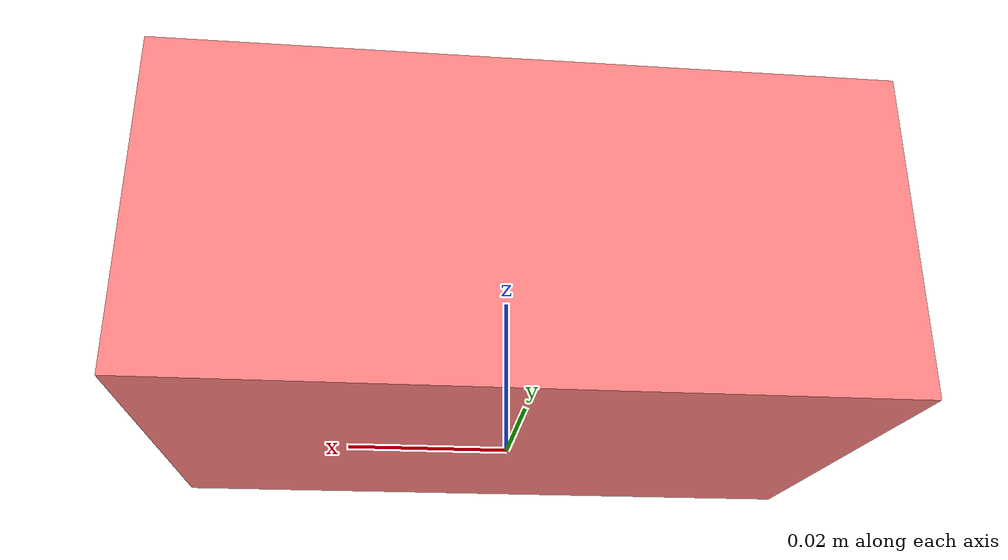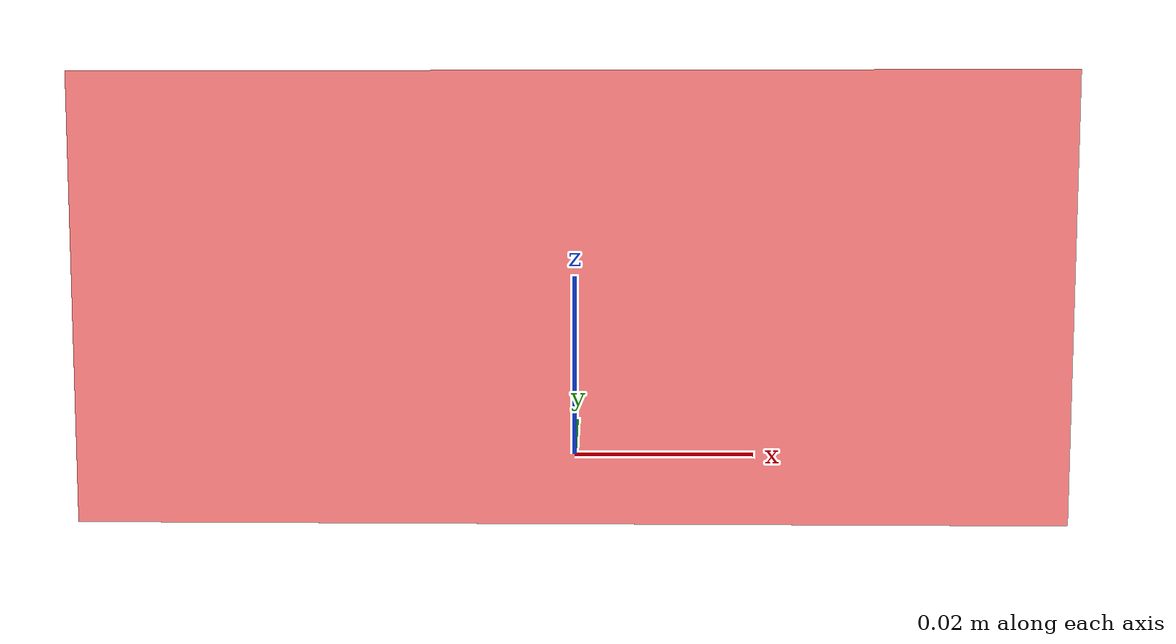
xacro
<?xml version="1.0"?>
<robot xmlns:xacro="http://www.ros.org/wiki/xacro">

    <!-- dimensions of the pi box -->
    <xacro:property name="pilength" value="0.088" />
    <xacro:property name="piwidth" value="0.056" />
    <xacro:property name="piheight" value="0.040" />

    <material name="pi-box">
        <color rgba="1.0 0.5 0.5 1.0" />
    </material>

    <link name="pi_box">
        <visual>
            <origin xyz="0.0 0.0 ${piheight/2}" />
            <geometry>
                <box size="${pilength} ${piwidth} ${piheight}" />
            </geometry>
            <material name="pi-box" />
        </visual>
        <collision>
            <origin xyz="0.0 0.0 ${piheight/2}" />
            <geometry>
                <box size="${pilength} ${piwidth} ${piheight}" />
            </geometry>
        </collision>
        <xacro:inertial_box mass="0.100" x="${pilength}" y="${piwidth}" z="${piheight}">
            <origin xyz="0 0 0" rpy="0 0 0"/>
        </xacro:inertial_box>
    </link>

    <gazebo reference="pi_box">
        <material>Gazebo/Blue</material>
    </gazebo>

</robot>
